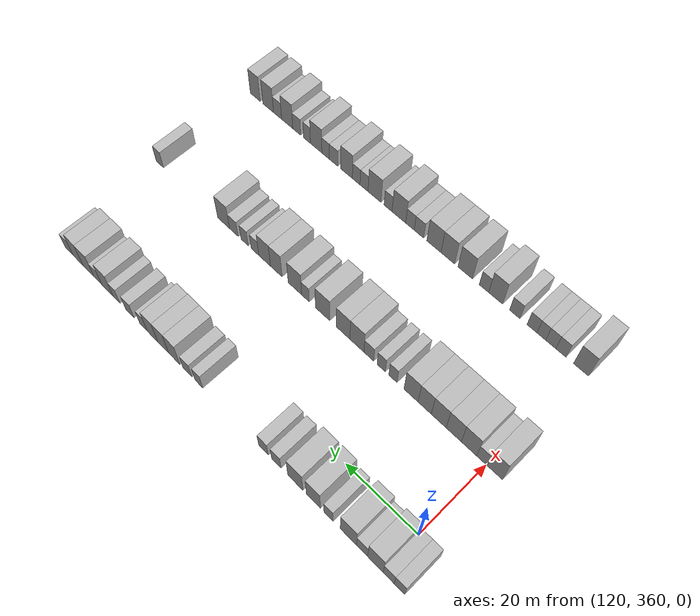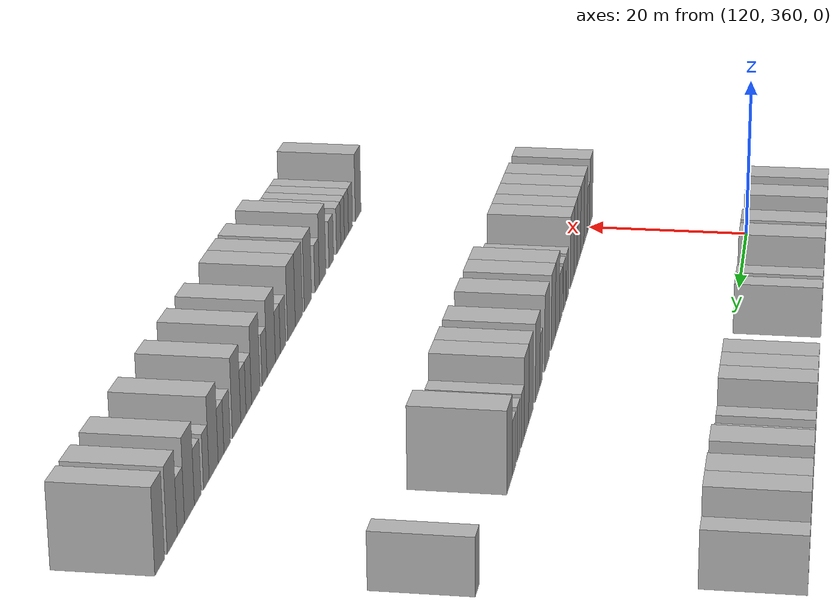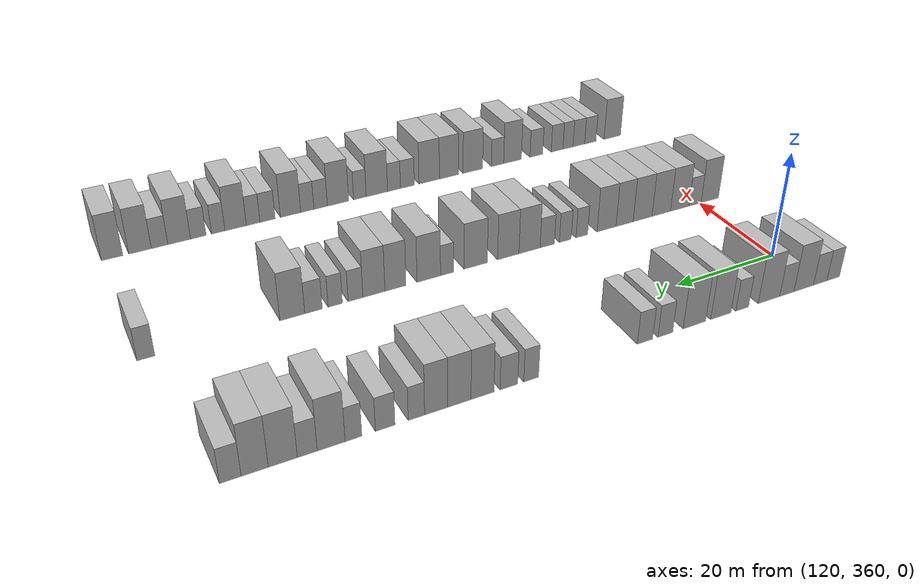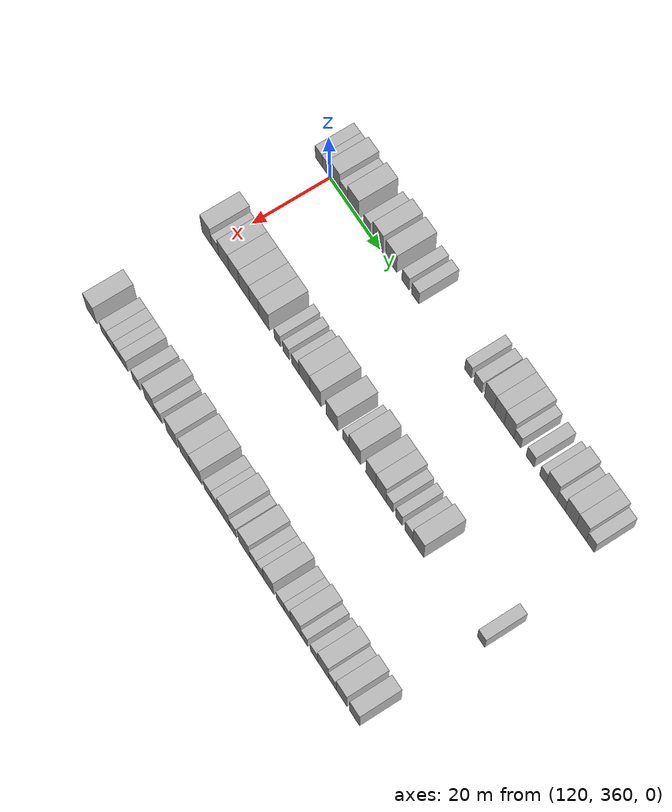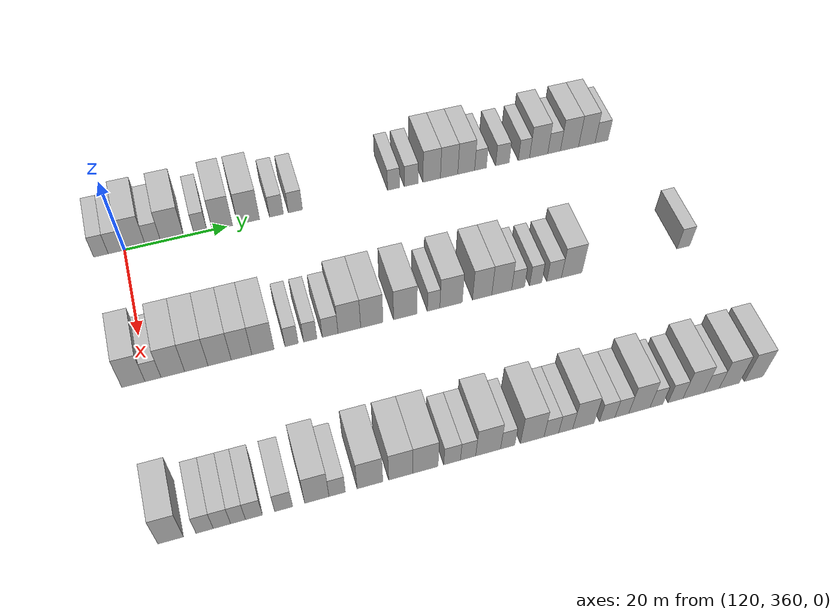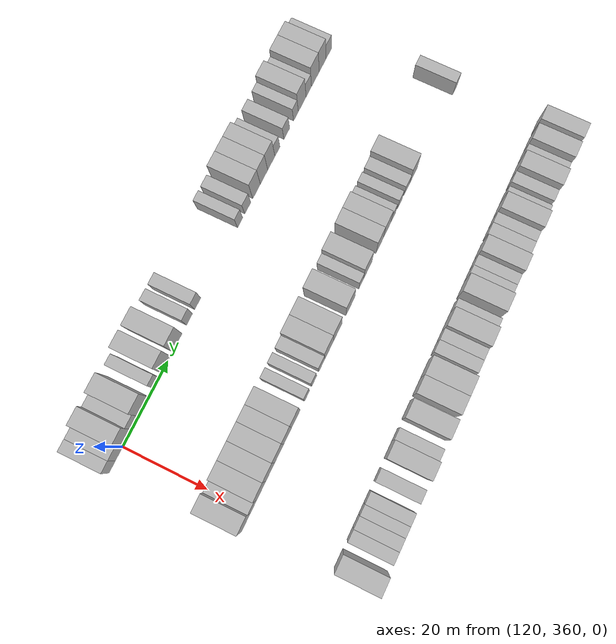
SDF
<sdf version="1.6">
 <world name="default">
  <model name="building_921">
   <static>1</static>
   <pose>115.0000 355.5562 0 0.000000 0.000000 0.000000</pose>
   <link name="link">
    <pose>0 0 3.00 0 0 0</pose>
    <collision name="collision"><geometry><box><size>10.0000 2.7755 6.0000</size></box></geometry></collision>
    <visual name="visual">
     <cast_shadows>0</cast_shadows>
     <geometry><box><size>10.0000 2.7755 6.0000</size></box></geometry>
     <material>
      <script>
       <uri>model://HANNAS_wall/materials/scripts</uri>
       <uri>model://HANNAS_wall/materials/textures</uri>
       <name>vrc/HANNAS_wall</name>
      </script>
     </material>
    </visual>
   </link>
  </model>
  <model name="building_922">
   <static>1</static>
   <pose>115.0000 358.4067 0 0.000000 0.000000 0.000000</pose>
   <link name="link">
    <pose>0 0 3.00 0 0 0</pose>
    <collision name="collision"><geometry><box><size>10.0000 2.9255 6.0000</size></box></geometry></collision>
    <visual name="visual">
     <cast_shadows>0</cast_shadows>
     <geometry><box><size>10.0000 2.9255 6.0000</size></box></geometry>
     <material>
      <script>
       <uri>model://HANNAS_wall/materials/scripts</uri>
       <uri>model://HANNAS_wall/materials/textures</uri>
       <name>vrc/HANNAS_wall</name>
      </script>
     </material>
    </visual>
   </link>
  </model>
  <model name="building_923">
   <static>1</static>
   <pose>115.0000 361.9627 0 0.000000 0.000000 0.000000</pose>
   <link name="link">
    <pose>0 0 4.50 0 0 0</pose>
    <collision name="collision"><geometry><box><size>10.0000 4.1866 9.0000</size></box></geometry></collision>
    <visual name="visual">
     <cast_shadows>0</cast_shadows>
     <geometry><box><size>10.0000 4.1866 9.0000</size></box></geometry>
     <material>
      <script>
       <uri>model://HANNAS_wall/materials/scripts</uri>
       <uri>model://HANNAS_wall/materials/textures</uri>
       <name>vrc/HANNAS_wall</name>
      </script>
     </material>
    </visual>
   </link>
  </model>
  <model name="building_924">
   <static>1</static>
   <pose>115.0000 365.5519 0 0.000000 0.000000 0.000000</pose>
   <link name="link">
    <pose>0 0 3.00 0 0 0</pose>
    <collision name="collision"><geometry><box><size>10.0000 2.9918 6.0000</size></box></geometry></collision>
    <visual name="visual">
     <cast_shadows>0</cast_shadows>
     <geometry><box><size>10.0000 2.9918 6.0000</size></box></geometry>
     <material>
      <script>
       <uri>model://HANNAS_wall/materials/scripts</uri>
       <uri>model://HANNAS_wall/materials/textures</uri>
       <name>vrc/HANNAS_wall</name>
      </script>
     </material>
    </visual>
   </link>
  </model>
  <model name="building_925">
   <static>1</static>
   <pose>115.0000 369.2800 0 0.000000 0.000000 0.000000</pose>
   <link name="link">
    <pose>0 0 4.50 0 0 0</pose>
    <collision name="collision"><geometry><box><size>10.0000 4.4643 9.0000</size></box></geometry></collision>
    <visual name="visual">
     <cast_shadows>0</cast_shadows>
     <geometry><box><size>10.0000 4.4643 9.0000</size></box></geometry>
     <material>
      <script>
       <uri>model://HANNAS_wall/materials/scripts</uri>
       <uri>model://HANNAS_wall/materials/textures</uri>
       <name>vrc/HANNAS_wall</name>
      </script>
     </material>
    </visual>
   </link>
  </model>
  <model name="building_926">
   <static>1</static>
   <pose>115.0000 374.7971 0 0.000000 0.000000 0.000000</pose>
   <link name="link">
    <pose>0 0 3.00 0 0 0</pose>
    <collision name="collision"><geometry><box><size>10.0000 2.5699 6.0000</size></box></geometry></collision>
    <visual name="visual">
     <cast_shadows>0</cast_shadows>
     <geometry><box><size>10.0000 2.5699 6.0000</size></box></geometry>
     <material>
      <script>
       <uri>model://HANNAS_wall/materials/scripts</uri>
       <uri>model://HANNAS_wall/materials/textures</uri>
       <name>vrc/HANNAS_wall</name>
      </script>
     </material>
    </visual>
   </link>
  </model>
  <model name="building_927">
   <static>1</static>
   <pose>115.0000 379.0890 0 0.000000 0.000000 0.000000</pose>
   <link name="link">
    <pose>0 0 4.50 0 0 0</pose>
    <collision name="collision"><geometry><box><size>10.0000 4.0141 9.0000</size></box></geometry></collision>
    <visual name="visual">
     <cast_shadows>0</cast_shadows>
     <geometry><box><size>10.0000 4.0141 9.0000</size></box></geometry>
     <material>
      <script>
       <uri>model://HANNAS_wall/materials/scripts</uri>
       <uri>model://HANNAS_wall/materials/textures</uri>
       <name>vrc/HANNAS_wall</name>
      </script>
     </material>
    </visual>
   </link>
  </model>
  <model name="building_928">
   <static>1</static>
   <pose>115.0000 384.2812 0 0.000000 0.000000 0.000000</pose>
   <link name="link">
    <pose>0 0 4.50 0 0 0</pose>
    <collision name="collision"><geometry><box><size>10.0000 4.3702 9.0000</size></box></geometry></collision>
    <visual name="visual">
     <cast_shadows>0</cast_shadows>
     <geometry><box><size>10.0000 4.3702 9.0000</size></box></geometry>
     <material>
      <script>
       <uri>model://HANNAS_wall/materials/scripts</uri>
       <uri>model://HANNAS_wall/materials/textures</uri>
       <name>vrc/HANNAS_wall</name>
      </script>
     </material>
    </visual>
   </link>
  </model>
  <model name="building_929">
   <static>1</static>
   <pose>115.0000 389.8614 0 0.000000 0.000000 0.000000</pose>
   <link name="link">
    <pose>0 0 3.00 0 0 0</pose>
    <collision name="collision"><geometry><box><size>10.0000 2.7901 6.0000</size></box></geometry></collision>
    <visual name="visual">
     <cast_shadows>0</cast_shadows>
     <geometry><box><size>10.0000 2.7901 6.0000</size></box></geometry>
     <material>
      <script>
       <uri>model://HANNAS_wall/materials/scripts</uri>
       <uri>model://HANNAS_wall/materials/textures</uri>
       <name>vrc/HANNAS_wall</name>
      </script>
     </material>
    </visual>
   </link>
  </model>
  <model name="building_930">
   <static>1</static>
   <pose>115.0000 393.6793 0 0.000000 0.000000 0.000000</pose>
   <link name="link">
    <pose>0 0 3.00 0 0 0</pose>
    <collision name="collision"><geometry><box><size>10.0000 2.8458 6.0000</size></box></geometry></collision>
    <visual name="visual">
     <cast_shadows>0</cast_shadows>
     <geometry><box><size>10.0000 2.8458 6.0000</size></box></geometry>
     <material>
      <script>
       <uri>model://HANNAS_wall/materials/scripts</uri>
       <uri>model://HANNAS_wall/materials/textures</uri>
       <name>vrc/HANNAS_wall</name>
      </script>
     </material>
    </visual>
   </link>
  </model>
  <model name="building_931">
   <static>1</static>
   <pose>115.0000 413.8555 0 0.000000 0.000000 0.000000</pose>
   <link name="link">
    <pose>0 0 3.00 0 0 0</pose>
    <collision name="collision"><geometry><box><size>10.0000 2.5021 6.0000</size></box></geometry></collision>
    <visual name="visual">
     <cast_shadows>0</cast_shadows>
     <geometry><box><size>10.0000 2.5021 6.0000</size></box></geometry>
     <material>
      <script>
       <uri>model://HANNAS_wall/materials/scripts</uri>
       <uri>model://HANNAS_wall/materials/textures</uri>
       <name>vrc/HANNAS_wall</name>
      </script>
     </material>
    </visual>
   </link>
  </model>
  <model name="building_932">
   <static>1</static>
   <pose>115.0000 417.5689 0 0.000000 0.000000 0.000000</pose>
   <link name="link">
    <pose>0 0 3.00 0 0 0</pose>
    <collision name="collision"><geometry><box><size>10.0000 2.9247 6.0000</size></box></geometry></collision>
    <visual name="visual">
     <cast_shadows>0</cast_shadows>
     <geometry><box><size>10.0000 2.9247 6.0000</size></box></geometry>
     <material>
      <script>
       <uri>model://HANNAS_wall/materials/scripts</uri>
       <uri>model://HANNAS_wall/materials/textures</uri>
       <name>vrc/HANNAS_wall</name>
      </script>
     </material>
    </visual>
   </link>
  </model>
  <model name="building_933">
   <static>1</static>
   <pose>115.0000 421.8934 0 0.000000 0.000000 0.000000</pose>
   <link name="link">
    <pose>0 0 4.50 0 0 0</pose>
    <collision name="collision"><geometry><box><size>10.0000 3.7242 9.0000</size></box></geometry></collision>
    <visual name="visual">
     <cast_shadows>0</cast_shadows>
     <geometry><box><size>10.0000 3.7242 9.0000</size></box></geometry>
     <material>
      <script>
       <uri>model://HANNAS_wall/materials/scripts</uri>
       <uri>model://HANNAS_wall/materials/textures</uri>
       <name>vrc/HANNAS_wall</name>
      </script>
     </material>
    </visual>
   </link>
  </model>
  <model name="building_934">
   <static>1</static>
   <pose>115.0000 425.6030 0 0.000000 0.000000 0.000000</pose>
   <link name="link">
    <pose>0 0 4.50 0 0 0</pose>
    <collision name="collision"><geometry><box><size>10.0000 3.6951 9.0000</size></box></geometry></collision>
    <visual name="visual">
     <cast_shadows>0</cast_shadows>
     <geometry><box><size>10.0000 3.6951 9.0000</size></box></geometry>
     <material>
      <script>
       <uri>model://HANNAS_wall/materials/scripts</uri>
       <uri>model://HANNAS_wall/materials/textures</uri>
       <name>vrc/HANNAS_wall</name>
      </script>
     </material>
    </visual>
   </link>
  </model>
  <model name="building_935">
   <static>1</static>
   <pose>115.0000 429.2545 0 0.000000 0.000000 0.000000</pose>
   <link name="link">
    <pose>0 0 4.50 0 0 0</pose>
    <collision name="collision"><geometry><box><size>10.0000 3.6079 9.0000</size></box></geometry></collision>
    <visual name="visual">
     <cast_shadows>0</cast_shadows>
     <geometry><box><size>10.0000 3.6079 9.0000</size></box></geometry>
     <material>
      <script>
       <uri>model://HANNAS_wall/materials/scripts</uri>
       <uri>model://HANNAS_wall/materials/textures</uri>
       <name>vrc/HANNAS_wall</name>
      </script>
     </material>
    </visual>
   </link>
  </model>
  <model name="building_936">
   <static>1</static>
   <pose>115.0000 432.3231 0 0.000000 0.000000 0.000000</pose>
   <link name="link">
    <pose>0 0 3.00 0 0 0</pose>
    <collision name="collision"><geometry><box><size>10.0000 2.5294 6.0000</size></box></geometry></collision>
    <visual name="visual">
     <cast_shadows>0</cast_shadows>
     <geometry><box><size>10.0000 2.5294 6.0000</size></box></geometry>
     <material>
      <script>
       <uri>model://HANNAS_wall/materials/scripts</uri>
       <uri>model://HANNAS_wall/materials/textures</uri>
       <name>vrc/HANNAS_wall</name>
      </script>
     </material>
    </visual>
   </link>
  </model>
  <model name="building_937">
   <static>1</static>
   <pose>115.0000 437.0625 0 0.000000 0.000000 0.000000</pose>
   <link name="link">
    <pose>0 0 3.00 0 0 0</pose>
    <collision name="collision"><geometry><box><size>10.0000 2.9494 6.0000</size></box></geometry></collision>
    <visual name="visual">
     <cast_shadows>0</cast_shadows>
     <geometry><box><size>10.0000 2.9494 6.0000</size></box></geometry>
     <material>
      <script>
       <uri>model://HANNAS_wall/materials/scripts</uri>
       <uri>model://HANNAS_wall/materials/textures</uri>
       <name>vrc/HANNAS_wall</name>
      </script>
     </material>
    </visual>
   </link>
  </model>
  <model name="building_938">
   <static>1</static>
   <pose>115.0000 441.7615 0 0.000000 0.000000 0.000000</pose>
   <link name="link">
    <pose>0 0 3.00 0 0 0</pose>
    <collision name="collision"><geometry><box><size>10.0000 2.4487 6.0000</size></box></geometry></collision>
    <visual name="visual">
     <cast_shadows>0</cast_shadows>
     <geometry><box><size>10.0000 2.4487 6.0000</size></box></geometry>
     <material>
      <script>
       <uri>model://HANNAS_wall/materials/scripts</uri>
       <uri>model://HANNAS_wall/materials/textures</uri>
       <name>vrc/HANNAS_wall</name>
      </script>
     </material>
    </visual>
   </link>
  </model>
  <model name="building_939">
   <static>1</static>
   <pose>115.0000 444.9935 0 0.000000 0.000000 0.000000</pose>
   <link name="link">
    <pose>0 0 4.50 0 0 0</pose>
    <collision name="collision"><geometry><box><size>10.0000 4.0154 9.0000</size></box></geometry></collision>
    <visual name="visual">
     <cast_shadows>0</cast_shadows>
     <geometry><box><size>10.0000 4.0154 9.0000</size></box></geometry>
     <material>
      <script>
       <uri>model://HANNAS_wall/materials/scripts</uri>
       <uri>model://HANNAS_wall/materials/textures</uri>
       <name>vrc/HANNAS_wall</name>
      </script>
     </material>
    </visual>
   </link>
  </model>
  <model name="building_940">
   <static>1</static>
   <pose>115.0000 448.4038 0 0.000000 0.000000 0.000000</pose>
   <link name="link">
    <pose>0 0 3.00 0 0 0</pose>
    <collision name="collision"><geometry><box><size>10.0000 2.8053 6.0000</size></box></geometry></collision>
    <visual name="visual">
     <cast_shadows>0</cast_shadows>
     <geometry><box><size>10.0000 2.8053 6.0000</size></box></geometry>
     <material>
      <script>
       <uri>model://HANNAS_wall/materials/scripts</uri>
       <uri>model://HANNAS_wall/materials/textures</uri>
       <name>vrc/HANNAS_wall</name>
      </script>
     </material>
    </visual>
   </link>
  </model>
  <model name="building_941">
   <static>1</static>
   <pose>115.0000 451.8221 0 0.000000 0.000000 0.000000</pose>
   <link name="link">
    <pose>0 0 4.50 0 0 0</pose>
    <collision name="collision"><geometry><box><size>10.0000 4.0312 9.0000</size></box></geometry></collision>
    <visual name="visual">
     <cast_shadows>0</cast_shadows>
     <geometry><box><size>10.0000 4.0312 9.0000</size></box></geometry>
     <material>
      <script>
       <uri>model://HANNAS_wall/materials/scripts</uri>
       <uri>model://HANNAS_wall/materials/textures</uri>
       <name>vrc/HANNAS_wall</name>
      </script>
     </material>
    </visual>
   </link>
  </model>
  <model name="building_942">
   <static>1</static>
   <pose>115.0000 455.6814 0 0.000000 0.000000 0.000000</pose>
   <link name="link">
    <pose>0 0 4.50 0 0 0</pose>
    <collision name="collision"><geometry><box><size>10.0000 3.6874 9.0000</size></box></geometry></collision>
    <visual name="visual">
     <cast_shadows>0</cast_shadows>
     <geometry><box><size>10.0000 3.6874 9.0000</size></box></geometry>
     <material>
      <script>
       <uri>model://HANNAS_wall/materials/scripts</uri>
       <uri>model://HANNAS_wall/materials/textures</uri>
       <name>vrc/HANNAS_wall</name>
      </script>
     </material>
    </visual>
   </link>
  </model>
  <model name="building_943">
   <static>1</static>
   <pose>115.0000 458.9762 0 0.000000 0.000000 0.000000</pose>
   <link name="link">
    <pose>0 0 3.00 0 0 0</pose>
    <collision name="collision"><geometry><box><size>10.0000 2.9020 6.0000</size></box></geometry></collision>
    <visual name="visual">
     <cast_shadows>0</cast_shadows>
     <geometry><box><size>10.0000 2.9020 6.0000</size></box></geometry>
     <material>
      <script>
       <uri>model://HANNAS_wall/materials/scripts</uri>
       <uri>model://HANNAS_wall/materials/textures</uri>
       <name>vrc/HANNAS_wall</name>
      </script>
     </material>
    </visual>
   </link>
  </model>
  <model name="building_1139">
   <static>1</static>
   <pose>145.0000 357.7288 0 0.000000 0.000000 0.000000</pose>
   <link name="link">
    <pose>0 0 4.50 0 0 0</pose>
    <collision name="collision"><geometry><box><size>10.0000 4.0595 9.0000</size></box></geometry></collision>
    <visual name="visual">
     <cast_shadows>0</cast_shadows>
     <geometry><box><size>10.0000 4.0595 9.0000</size></box></geometry>
     <material>
      <script>
       <uri>model://HANNAS_wall/materials/scripts</uri>
       <uri>model://HANNAS_wall/materials/textures</uri>
       <name>vrc/HANNAS_wall</name>
      </script>
     </material>
    </visual>
   </link>
  </model>
  <model name="building_1140">
   <static>1</static>
   <pose>145.0000 361.1741 0 0.000000 0.000000 0.000000</pose>
   <link name="link">
    <pose>0 0 3.00 0 0 0</pose>
    <collision name="collision"><geometry><box><size>10.0000 2.8312 6.0000</size></box></geometry></collision>
    <visual name="visual">
     <cast_shadows>0</cast_shadows>
     <geometry><box><size>10.0000 2.8312 6.0000</size></box></geometry>
     <material>
      <script>
       <uri>model://HANNAS_wall/materials/scripts</uri>
       <uri>model://HANNAS_wall/materials/textures</uri>
       <name>vrc/HANNAS_wall</name>
      </script>
     </material>
    </visual>
   </link>
  </model>
  <model name="building_1141">
   <static>1</static>
   <pose>145.0000 364.6829 0 0.000000 0.000000 0.000000</pose>
   <link name="link">
    <pose>0 0 4.50 0 0 0</pose>
    <collision name="collision"><geometry><box><size>10.0000 4.1863 9.0000</size></box></geometry></collision>
    <visual name="visual">
     <cast_shadows>0</cast_shadows>
     <geometry><box><size>10.0000 4.1863 9.0000</size></box></geometry>
     <material>
      <script>
       <uri>model://HANNAS_wall/materials/scripts</uri>
       <uri>model://HANNAS_wall/materials/textures</uri>
       <name>vrc/HANNAS_wall</name>
      </script>
     </material>
    </visual>
   </link>
  </model>
  <model name="building_1142">
   <static>1</static>
   <pose>145.0000 368.8574 0 0.000000 0.000000 0.000000</pose>
   <link name="link">
    <pose>0 0 4.50 0 0 0</pose>
    <collision name="collision"><geometry><box><size>10.0000 4.1627 9.0000</size></box></geometry></collision>
    <visual name="visual">
     <cast_shadows>0</cast_shadows>
     <geometry><box><size>10.0000 4.1627 9.0000</size></box></geometry>
     <material>
      <script>
       <uri>model://HANNAS_wall/materials/scripts</uri>
       <uri>model://HANNAS_wall/materials/textures</uri>
       <name>vrc/HANNAS_wall</name>
      </script>
     </material>
    </visual>
   </link>
  </model>
  <model name="building_1143">
   <static>1</static>
   <pose>145.0000 373.0242 0 0.000000 0.000000 0.000000</pose>
   <link name="link">
    <pose>0 0 4.50 0 0 0</pose>
    <collision name="collision"><geometry><box><size>10.0000 4.1710 9.0000</size></box></geometry></collision>
    <visual name="visual">
     <cast_shadows>0</cast_shadows>
     <geometry><box><size>10.0000 4.1710 9.0000</size></box></geometry>
     <material>
      <script>
       <uri>model://HANNAS_wall/materials/scripts</uri>
       <uri>model://HANNAS_wall/materials/textures</uri>
       <name>vrc/HANNAS_wall</name>
      </script>
     </material>
    </visual>
   </link>
  </model>
  <model name="building_1144">
   <static>1</static>
   <pose>145.0000 376.9782 0 0.000000 0.000000 0.000000</pose>
   <link name="link">
    <pose>0 0 4.50 0 0 0</pose>
    <collision name="collision"><geometry><box><size>10.0000 3.7372 9.0000</size></box></geometry></collision>
    <visual name="visual">
     <cast_shadows>0</cast_shadows>
     <geometry><box><size>10.0000 3.7372 9.0000</size></box></geometry>
     <material>
      <script>
       <uri>model://HANNAS_wall/materials/scripts</uri>
       <uri>model://HANNAS_wall/materials/textures</uri>
       <name>vrc/HANNAS_wall</name>
      </script>
     </material>
    </visual>
   </link>
  </model>
  <model name="building_1145">
   <static>1</static>
   <pose>145.0000 380.8734 0 0.000000 0.000000 0.000000</pose>
   <link name="link">
    <pose>0 0 4.50 0 0 0</pose>
    <collision name="collision"><geometry><box><size>10.0000 4.0532 9.0000</size></box></geometry></collision>
    <visual name="visual">
     <cast_shadows>0</cast_shadows>
     <geometry><box><size>10.0000 4.0532 9.0000</size></box></geometry>
     <material>
      <script>
       <uri>model://HANNAS_wall/materials/scripts</uri>
       <uri>model://HANNAS_wall/materials/textures</uri>
       <name>vrc/HANNAS_wall</name>
      </script>
     </material>
    </visual>
   </link>
  </model>
  <model name="building_1146">
   <static>1</static>
   <pose>145.0000 386.1185 0 0.000000 0.000000 0.000000</pose>
   <link name="link">
    <pose>0 0 3.00 0 0 0</pose>
    <collision name="collision"><geometry><box><size>10.0000 2.4369 6.0000</size></box></geometry></collision>
    <visual name="visual">
     <cast_shadows>0</cast_shadows>
     <geometry><box><size>10.0000 2.4369 6.0000</size></box></geometry>
     <material>
      <script>
       <uri>model://HANNAS_wall/materials/scripts</uri>
       <uri>model://HANNAS_wall/materials/textures</uri>
       <name>vrc/HANNAS_wall</name>
      </script>
     </material>
    </visual>
   </link>
  </model>
  <model name="building_1147">
   <static>1</static>
   <pose>145.0000 389.5645 0 0.000000 0.000000 0.000000</pose>
   <link name="link">
    <pose>0 0 3.00 0 0 0</pose>
    <collision name="collision"><geometry><box><size>10.0000 2.4551 6.0000</size></box></geometry></collision>
    <visual name="visual">
     <cast_shadows>0</cast_shadows>
     <geometry><box><size>10.0000 2.4551 6.0000</size></box></geometry>
     <material>
      <script>
       <uri>model://HANNAS_wall/materials/scripts</uri>
       <uri>model://HANNAS_wall/materials/textures</uri>
       <name>vrc/HANNAS_wall</name>
      </script>
     </material>
    </visual>
   </link>
  </model>
  <model name="building_1148">
   <static>1</static>
   <pose>145.0000 393.2566 0 0.000000 0.000000 0.000000</pose>
   <link name="link">
    <pose>0 0 3.00 0 0 0</pose>
    <collision name="collision"><geometry><box><size>10.0000 2.9292 6.0000</size></box></geometry></collision>
    <visual name="visual">
     <cast_shadows>0</cast_shadows>
     <geometry><box><size>10.0000 2.9292 6.0000</size></box></geometry>
     <material>
      <script>
       <uri>model://HANNAS_wall/materials/scripts</uri>
       <uri>model://HANNAS_wall/materials/textures</uri>
       <name>vrc/HANNAS_wall</name>
      </script>
     </material>
    </visual>
   </link>
  </model>
  <model name="building_1149">
   <static>1</static>
   <pose>145.0000 396.8478 0 0.000000 0.000000 0.000000</pose>
   <link name="link">
    <pose>0 0 4.50 0 0 0</pose>
    <collision name="collision"><geometry><box><size>10.0000 4.2532 9.0000</size></box></geometry></collision>
    <visual name="visual">
     <cast_shadows>0</cast_shadows>
     <geometry><box><size>10.0000 4.2532 9.0000</size></box></geometry>
     <material>
      <script>
       <uri>model://HANNAS_wall/materials/scripts</uri>
       <uri>model://HANNAS_wall/materials/textures</uri>
       <name>vrc/HANNAS_wall</name>
      </script>
     </material>
    </visual>
   </link>
  </model>
  <model name="building_1150">
   <static>1</static>
   <pose>145.0000 401.0845 0 0.000000 0.000000 0.000000</pose>
   <link name="link">
    <pose>0 0 4.50 0 0 0</pose>
    <collision name="collision"><geometry><box><size>10.0000 4.2203 9.0000</size></box></geometry></collision>
    <visual name="visual">
     <cast_shadows>0</cast_shadows>
     <geometry><box><size>10.0000 4.2203 9.0000</size></box></geometry>
     <material>
      <script>
       <uri>model://HANNAS_wall/materials/scripts</uri>
       <uri>model://HANNAS_wall/materials/textures</uri>
       <name>vrc/HANNAS_wall</name>
      </script>
     </material>
    </visual>
   </link>
  </model>
  <model name="building_1151">
   <static>1</static>
   <pose>145.0000 407.4336 0 0.000000 0.000000 0.000000</pose>
   <link name="link">
    <pose>0 0 4.50 0 0 0</pose>
    <collision name="collision"><geometry><box><size>10.0000 4.4779 9.0000</size></box></geometry></collision>
    <visual name="visual">
     <cast_shadows>0</cast_shadows>
     <geometry><box><size>10.0000 4.4779 9.0000</size></box></geometry>
     <material>
      <script>
       <uri>model://HANNAS_wall/materials/scripts</uri>
       <uri>model://HANNAS_wall/materials/textures</uri>
       <name>vrc/HANNAS_wall</name>
      </script>
     </material>
    </visual>
   </link>
  </model>
  <model name="building_1152">
   <static>1</static>
   <pose>145.0000 412.8787 0 0.000000 0.000000 0.000000</pose>
   <link name="link">
    <pose>0 0 3.00 0 0 0</pose>
    <collision name="collision"><geometry><box><size>10.0000 2.4122 6.0000</size></box></geometry></collision>
    <visual name="visual">
     <cast_shadows>0</cast_shadows>
     <geometry><box><size>10.0000 2.4122 6.0000</size></box></geometry>
     <material>
      <script>
       <uri>model://HANNAS_wall/materials/scripts</uri>
       <uri>model://HANNAS_wall/materials/textures</uri>
       <name>vrc/HANNAS_wall</name>
      </script>
     </material>
    </visual>
   </link>
  </model>
  <model name="building_1153">
   <static>1</static>
   <pose>145.0000 416.2638 0 0.000000 0.000000 0.000000</pose>
   <link name="link">
    <pose>0 0 4.50 0 0 0</pose>
    <collision name="collision"><geometry><box><size>10.0000 4.3581 9.0000</size></box></geometry></collision>
    <visual name="visual">
     <cast_shadows>0</cast_shadows>
     <geometry><box><size>10.0000 4.3581 9.0000</size></box></geometry>
     <material>
      <script>
       <uri>model://HANNAS_wall/materials/scripts</uri>
       <uri>model://HANNAS_wall/materials/textures</uri>
       <name>vrc/HANNAS_wall</name>
      </script>
     </material>
    </visual>
   </link>
  </model>
  <model name="building_1154">
   <static>1</static>
   <pose>145.0000 422.3423 0 0.000000 0.000000 0.000000</pose>
   <link name="link">
    <pose>0 0 4.50 0 0 0</pose>
    <collision name="collision"><geometry><box><size>10.0000 3.7988 9.0000</size></box></geometry></collision>
    <visual name="visual">
     <cast_shadows>0</cast_shadows>
     <geometry><box><size>10.0000 3.7988 9.0000</size></box></geometry>
     <material>
      <script>
       <uri>model://HANNAS_wall/materials/scripts</uri>
       <uri>model://HANNAS_wall/materials/textures</uri>
       <name>vrc/HANNAS_wall</name>
      </script>
     </material>
    </visual>
   </link>
  </model>
  <model name="building_1155">
   <static>1</static>
   <pose>145.0000 426.1955 0 0.000000 0.000000 0.000000</pose>
   <link name="link">
    <pose>0 0 4.50 0 0 0</pose>
    <collision name="collision"><geometry><box><size>10.0000 3.9078 9.0000</size></box></geometry></collision>
    <visual name="visual">
     <cast_shadows>0</cast_shadows>
     <geometry><box><size>10.0000 3.9078 9.0000</size></box></geometry>
     <material>
      <script>
       <uri>model://HANNAS_wall/materials/scripts</uri>
       <uri>model://HANNAS_wall/materials/textures</uri>
       <name>vrc/HANNAS_wall</name>
      </script>
     </material>
    </visual>
   </link>
  </model>
  <model name="building_1156">
   <static>1</static>
   <pose>145.0000 429.4367 0 0.000000 0.000000 0.000000</pose>
   <link name="link">
    <pose>0 0 3.00 0 0 0</pose>
    <collision name="collision"><geometry><box><size>10.0000 2.5746 6.0000</size></box></geometry></collision>
    <visual name="visual">
     <cast_shadows>0</cast_shadows>
     <geometry><box><size>10.0000 2.5746 6.0000</size></box></geometry>
     <material>
      <script>
       <uri>model://HANNAS_wall/materials/scripts</uri>
       <uri>model://HANNAS_wall/materials/textures</uri>
       <name>vrc/HANNAS_wall</name>
      </script>
     </material>
    </visual>
   </link>
  </model>
  <model name="building_1157">
   <static>1</static>
   <pose>145.0000 432.9479 0 0.000000 0.000000 0.000000</pose>
   <link name="link">
    <pose>0 0 3.00 0 0 0</pose>
    <collision name="collision"><geometry><box><size>10.0000 2.4478 6.0000</size></box></geometry></collision>
    <visual name="visual">
     <cast_shadows>0</cast_shadows>
     <geometry><box><size>10.0000 2.4478 6.0000</size></box></geometry>
     <material>
      <script>
       <uri>model://HANNAS_wall/materials/scripts</uri>
       <uri>model://HANNAS_wall/materials/textures</uri>
       <name>vrc/HANNAS_wall</name>
      </script>
     </material>
    </visual>
   </link>
  </model>
  <model name="building_1158">
   <static>1</static>
   <pose>145.0000 436.6509 0 0.000000 0.000000 0.000000</pose>
   <link name="link">
    <pose>0 0 3.00 0 0 0</pose>
    <collision name="collision"><geometry><box><size>10.0000 2.9582 6.0000</size></box></geometry></collision>
    <visual name="visual">
     <cast_shadows>0</cast_shadows>
     <geometry><box><size>10.0000 2.9582 6.0000</size></box></geometry>
     <material>
      <script>
       <uri>model://HANNAS_wall/materials/scripts</uri>
       <uri>model://HANNAS_wall/materials/textures</uri>
       <name>vrc/HANNAS_wall</name>
      </script>
     </material>
    </visual>
   </link>
  </model>
  <model name="building_1159">
   <static>1</static>
   <pose>145.0000 440.2053 0 0.000000 0.000000 0.000000</pose>
   <link name="link">
    <pose>0 0 4.50 0 0 0</pose>
    <collision name="collision"><geometry><box><size>10.0000 4.1506 9.0000</size></box></geometry></collision>
    <visual name="visual">
     <cast_shadows>0</cast_shadows>
     <geometry><box><size>10.0000 4.1506 9.0000</size></box></geometry>
     <material>
      <script>
       <uri>model://HANNAS_wall/materials/scripts</uri>
       <uri>model://HANNAS_wall/materials/textures</uri>
       <name>vrc/HANNAS_wall</name>
      </script>
     </material>
    </visual>
   </link>
  </model>
  <model name="building_1160">
   <static>1</static>
   <pose>145.0000 463.3162 0 0.000000 0.000000 0.000000</pose>
   <link name="link">
    <pose>0 0 3.00 0 0 0</pose>
    <collision name="collision"><geometry><box><size>10.0000 2.6904 6.0000</size></box></geometry></collision>
    <visual name="visual">
     <cast_shadows>0</cast_shadows>
     <geometry><box><size>10.0000 2.6904 6.0000</size></box></geometry>
     <material>
      <script>
       <uri>model://HANNAS_wall/materials/scripts</uri>
       <uri>model://HANNAS_wall/materials/textures</uri>
       <name>vrc/HANNAS_wall</name>
      </script>
     </material>
    </visual>
   </link>
  </model>
  <model name="building_1365">
   <static>1</static>
   <pose>175.0000 359.6142 0 0.000000 0.000000 0.000000</pose>
   <link name="link">
    <pose>0 0 4.50 0 0 0</pose>
    <collision name="collision"><geometry><box><size>10.0000 4.0930 9.0000</size></box></geometry></collision>
    <visual name="visual">
     <cast_shadows>0</cast_shadows>
     <geometry><box><size>10.0000 4.0930 9.0000</size></box></geometry>
     <material>
      <script>
       <uri>model://HANNAS_wall/materials/scripts</uri>
       <uri>model://HANNAS_wall/materials/textures</uri>
       <name>vrc/HANNAS_wall</name>
      </script>
     </material>
    </visual>
   </link>
  </model>
  <model name="building_1366">
   <static>1</static>
   <pose>175.0000 365.0560 0 0.000000 0.000000 0.000000</pose>
   <link name="link">
    <pose>0 0 3.00 0 0 0</pose>
    <collision name="collision"><geometry><box><size>10.0000 2.7904 6.0000</size></box></geometry></collision>
    <visual name="visual">
     <cast_shadows>0</cast_shadows>
     <geometry><box><size>10.0000 2.7904 6.0000</size></box></geometry>
     <material>
      <script>
       <uri>model://HANNAS_wall/materials/scripts</uri>
       <uri>model://HANNAS_wall/materials/textures</uri>
       <name>vrc/HANNAS_wall</name>
      </script>
     </material>
    </visual>
   </link>
  </model>
  <model name="building_1367">
   <static>1</static>
   <pose>175.0000 367.8610 0 0.000000 0.000000 0.000000</pose>
   <link name="link">
    <pose>0 0 3.00 0 0 0</pose>
    <collision name="collision"><geometry><box><size>10.0000 2.8197 6.0000</size></box></geometry></collision>
    <visual name="visual">
     <cast_shadows>0</cast_shadows>
     <geometry><box><size>10.0000 2.8197 6.0000</size></box></geometry>
     <material>
      <script>
       <uri>model://HANNAS_wall/materials/scripts</uri>
       <uri>model://HANNAS_wall/materials/textures</uri>
       <name>vrc/HANNAS_wall</name>
      </script>
     </material>
    </visual>
   </link>
  </model>
  <model name="building_1368">
   <static>1</static>
   <pose>175.0000 370.4854 0 0.000000 0.000000 0.000000</pose>
   <link name="link">
    <pose>0 0 3.00 0 0 0</pose>
    <collision name="collision"><geometry><box><size>10.0000 2.4291 6.0000</size></box></geometry></collision>
    <visual name="visual">
     <cast_shadows>0</cast_shadows>
     <geometry><box><size>10.0000 2.4291 6.0000</size></box></geometry>
     <material>
      <script>
       <uri>model://HANNAS_wall/materials/scripts</uri>
       <uri>model://HANNAS_wall/materials/textures</uri>
       <name>vrc/HANNAS_wall</name>
      </script>
     </material>
    </visual>
   </link>
  </model>
  <model name="building_1369">
   <static>1</static>
   <pose>175.0000 373.0976 0 0.000000 0.000000 0.000000</pose>
   <link name="link">
    <pose>0 0 3.00 0 0 0</pose>
    <collision name="collision"><geometry><box><size>10.0000 2.7953 6.0000</size></box></geometry></collision>
    <visual name="visual">
     <cast_shadows>0</cast_shadows>
     <geometry><box><size>10.0000 2.7953 6.0000</size></box></geometry>
     <material>
      <script>
       <uri>model://HANNAS_wall/materials/scripts</uri>
       <uri>model://HANNAS_wall/materials/textures</uri>
       <name>vrc/HANNAS_wall</name>
      </script>
     </material>
    </visual>
   </link>
  </model>
  <model name="building_1370">
   <static>1</static>
   <pose>175.0000 377.9907 0 0.000000 0.000000 0.000000</pose>
   <link name="link">
    <pose>0 0 3.00 0 0 0</pose>
    <collision name="collision"><geometry><box><size>10.0000 2.9908 6.0000</size></box></geometry></collision>
    <visual name="visual">
     <cast_shadows>0</cast_shadows>
     <geometry><box><size>10.0000 2.9908 6.0000</size></box></geometry>
     <material>
      <script>
       <uri>model://HANNAS_wall/materials/scripts</uri>
       <uri>model://HANNAS_wall/materials/textures</uri>
       <name>vrc/HANNAS_wall</name>
      </script>
     </material>
    </visual>
   </link>
  </model>
  <model name="building_1371">
   <static>1</static>
   <pose>175.0000 383.5188 0 0.000000 0.000000 0.000000</pose>
   <link name="link">
    <pose>0 0 4.50 0 0 0</pose>
    <collision name="collision"><geometry><box><size>10.0000 4.0653 9.0000</size></box></geometry></collision>
    <visual name="visual">
     <cast_shadows>0</cast_shadows>
     <geometry><box><size>10.0000 4.0653 9.0000</size></box></geometry>
     <material>
      <script>
       <uri>model://HANNAS_wall/materials/scripts</uri>
       <uri>model://HANNAS_wall/materials/textures</uri>
       <name>vrc/HANNAS_wall</name>
      </script>
     </material>
    </visual>
   </link>
  </model>
  <model name="building_1372">
   <static>1</static>
   <pose>175.0000 386.9304 0 0.000000 0.000000 0.000000</pose>
   <link name="link">
    <pose>0 0 3.00 0 0 0</pose>
    <collision name="collision"><geometry><box><size>10.0000 2.7580 6.0000</size></box></geometry></collision>
    <visual name="visual">
     <cast_shadows>0</cast_shadows>
     <geometry><box><size>10.0000 2.7580 6.0000</size></box></geometry>
     <material>
      <script>
       <uri>model://HANNAS_wall/materials/scripts</uri>
       <uri>model://HANNAS_wall/materials/textures</uri>
       <name>vrc/HANNAS_wall</name>
      </script>
     </material>
    </visual>
   </link>
  </model>
  <model name="building_1373">
   <static>1</static>
   <pose>175.0000 392.4930 0 0.000000 0.000000 0.000000</pose>
   <link name="link">
    <pose>0 0 4.50 0 0 0</pose>
    <collision name="collision"><geometry><box><size>10.0000 4.3671 9.0000</size></box></geometry></collision>
    <visual name="visual">
     <cast_shadows>0</cast_shadows>
     <geometry><box><size>10.0000 4.3671 9.0000</size></box></geometry>
     <material>
      <script>
       <uri>model://HANNAS_wall/materials/scripts</uri>
       <uri>model://HANNAS_wall/materials/textures</uri>
       <name>vrc/HANNAS_wall</name>
      </script>
     </material>
    </visual>
   </link>
  </model>
  <model name="building_1374">
   <static>1</static>
   <pose>175.0000 397.7545 0 0.000000 0.000000 0.000000</pose>
   <link name="link">
    <pose>0 0 4.50 0 0 0</pose>
    <collision name="collision"><geometry><box><size>10.0000 4.1559 9.0000</size></box></geometry></collision>
    <visual name="visual">
     <cast_shadows>0</cast_shadows>
     <geometry><box><size>10.0000 4.1559 9.0000</size></box></geometry>
     <material>
      <script>
       <uri>model://HANNAS_wall/materials/scripts</uri>
       <uri>model://HANNAS_wall/materials/textures</uri>
       <name>vrc/HANNAS_wall</name>
      </script>
     </material>
    </visual>
   </link>
  </model>
  <model name="building_1375">
   <static>1</static>
   <pose>175.0000 402.0270 0 0.000000 0.000000 0.000000</pose>
   <link name="link">
    <pose>0 0 4.50 0 0 0</pose>
    <collision name="collision"><geometry><box><size>10.0000 4.3890 9.0000</size></box></geometry></collision>
    <visual name="visual">
     <cast_shadows>0</cast_shadows>
     <geometry><box><size>10.0000 4.3890 9.0000</size></box></geometry>
     <material>
      <script>
       <uri>model://HANNAS_wall/materials/scripts</uri>
       <uri>model://HANNAS_wall/materials/textures</uri>
       <name>vrc/HANNAS_wall</name>
      </script>
     </material>
    </visual>
   </link>
  </model>
  <model name="building_1376">
   <static>1</static>
   <pose>175.0000 406.6888 0 0.000000 0.000000 0.000000</pose>
   <link name="link">
    <pose>0 0 3.00 0 0 0</pose>
    <collision name="collision"><geometry><box><size>10.0000 2.9346 6.0000</size></box></geometry></collision>
    <visual name="visual">
     <cast_shadows>0</cast_shadows>
     <geometry><box><size>10.0000 2.9346 6.0000</size></box></geometry>
     <material>
      <script>
       <uri>model://HANNAS_wall/materials/scripts</uri>
       <uri>model://HANNAS_wall/materials/textures</uri>
       <name>vrc/HANNAS_wall</name>
      </script>
     </material>
    </visual>
   </link>
  </model>
  <model name="building_1377">
   <static>1</static>
   <pose>175.0000 409.5014 0 0.000000 0.000000 0.000000</pose>
   <link name="link">
    <pose>0 0 3.00 0 0 0</pose>
    <collision name="collision"><geometry><box><size>10.0000 2.6906 6.0000</size></box></geometry></collision>
    <visual name="visual">
     <cast_shadows>0</cast_shadows>
     <geometry><box><size>10.0000 2.6906 6.0000</size></box></geometry>
     <material>
      <script>
       <uri>model://HANNAS_wall/materials/scripts</uri>
       <uri>model://HANNAS_wall/materials/textures</uri>
       <name>vrc/HANNAS_wall</name>
      </script>
     </material>
    </visual>
   </link>
  </model>
  <model name="building_1378">
   <static>1</static>
   <pose>175.0000 413.0454 0 0.000000 0.000000 0.000000</pose>
   <link name="link">
    <pose>0 0 4.50 0 0 0</pose>
    <collision name="collision"><geometry><box><size>10.0000 4.3973 9.0000</size></box></geometry></collision>
    <visual name="visual">
     <cast_shadows>0</cast_shadows>
     <geometry><box><size>10.0000 4.3973 9.0000</size></box></geometry>
     <material>
      <script>
       <uri>model://HANNAS_wall/materials/scripts</uri>
       <uri>model://HANNAS_wall/materials/textures</uri>
       <name>vrc/HANNAS_wall</name>
      </script>
     </material>
    </visual>
   </link>
  </model>
  <model name="building_1379">
   <static>1</static>
   <pose>175.0000 416.5241 0 0.000000 0.000000 0.000000</pose>
   <link name="link">
    <pose>0 0 3.00 0 0 0</pose>
    <collision name="collision"><geometry><box><size>10.0000 2.5602 6.0000</size></box></geometry></collision>
    <visual name="visual">
     <cast_shadows>0</cast_shadows>
     <geometry><box><size>10.0000 2.5602 6.0000</size></box></geometry>
     <material>
      <script>
       <uri>model://HANNAS_wall/materials/scripts</uri>
       <uri>model://HANNAS_wall/materials/textures</uri>
       <name>vrc/HANNAS_wall</name>
      </script>
     </material>
    </visual>
   </link>
  </model>
  <model name="building_1380">
   <static>1</static>
   <pose>175.0000 420.9299 0 0.000000 0.000000 0.000000</pose>
   <link name="link">
    <pose>0 0 4.50 0 0 0</pose>
    <collision name="collision"><geometry><box><size>10.0000 4.2514 9.0000</size></box></geometry></collision>
    <visual name="visual">
     <cast_shadows>0</cast_shadows>
     <geometry><box><size>10.0000 4.2514 9.0000</size></box></geometry>
     <material>
      <script>
       <uri>model://HANNAS_wall/materials/scripts</uri>
       <uri>model://HANNAS_wall/materials/textures</uri>
       <name>vrc/HANNAS_wall</name>
      </script>
     </material>
    </visual>
   </link>
  </model>
  <model name="building_1381">
   <static>1</static>
   <pose>175.0000 424.3909 0 0.000000 0.000000 0.000000</pose>
   <link name="link">
    <pose>0 0 3.00 0 0 0</pose>
    <collision name="collision"><geometry><box><size>10.0000 2.6704 6.0000</size></box></geometry></collision>
    <visual name="visual">
     <cast_shadows>0</cast_shadows>
     <geometry><box><size>10.0000 2.6704 6.0000</size></box></geometry>
     <material>
      <script>
       <uri>model://HANNAS_wall/materials/scripts</uri>
       <uri>model://HANNAS_wall/materials/textures</uri>
       <name>vrc/HANNAS_wall</name>
      </script>
     </material>
    </visual>
   </link>
  </model>
  <model name="building_1382">
   <static>1</static>
   <pose>175.0000 427.0057 0 0.000000 0.000000 0.000000</pose>
   <link name="link">
    <pose>0 0 3.00 0 0 0</pose>
    <collision name="collision"><geometry><box><size>10.0000 2.5592 6.0000</size></box></geometry></collision>
    <visual name="visual">
     <cast_shadows>0</cast_shadows>
     <geometry><box><size>10.0000 2.5592 6.0000</size></box></geometry>
     <material>
      <script>
       <uri>model://HANNAS_wall/materials/scripts</uri>
       <uri>model://HANNAS_wall/materials/textures</uri>
       <name>vrc/HANNAS_wall</name>
      </script>
     </material>
    </visual>
   </link>
  </model>
  <model name="building_1383">
   <static>1</static>
   <pose>175.0000 430.2521 0 0.000000 0.000000 0.000000</pose>
   <link name="link">
    <pose>0 0 4.50 0 0 0</pose>
    <collision name="collision"><geometry><box><size>10.0000 3.9335 9.0000</size></box></geometry></collision>
    <visual name="visual">
     <cast_shadows>0</cast_shadows>
     <geometry><box><size>10.0000 3.9335 9.0000</size></box></geometry>
     <material>
      <script>
       <uri>model://HANNAS_wall/materials/scripts</uri>
       <uri>model://HANNAS_wall/materials/textures</uri>
       <name>vrc/HANNAS_wall</name>
      </script>
     </material>
    </visual>
   </link>
  </model>
  <model name="building_1384">
   <static>1</static>
   <pose>175.0000 434.6545 0 0.000000 0.000000 0.000000</pose>
   <link name="link">
    <pose>0 0 3.00 0 0 0</pose>
    <collision name="collision"><geometry><box><size>10.0000 2.8715 6.0000</size></box></geometry></collision>
    <visual name="visual">
     <cast_shadows>0</cast_shadows>
     <geometry><box><size>10.0000 2.8715 6.0000</size></box></geometry>
     <material>
      <script>
       <uri>model://HANNAS_wall/materials/scripts</uri>
       <uri>model://HANNAS_wall/materials/textures</uri>
       <name>vrc/HANNAS_wall</name>
      </script>
     </material>
    </visual>
   </link>
  </model>
  <model name="building_1385">
   <static>1</static>
   <pose>175.0000 437.3708 0 0.000000 0.000000 0.000000</pose>
   <link name="link">
    <pose>0 0 3.00 0 0 0</pose>
    <collision name="collision"><geometry><box><size>10.0000 2.5611 6.0000</size></box></geometry></collision>
    <visual name="visual">
     <cast_shadows>0</cast_shadows>
     <geometry><box><size>10.0000 2.5611 6.0000</size></box></geometry>
     <material>
      <script>
       <uri>model://HANNAS_wall/materials/scripts</uri>
       <uri>model://HANNAS_wall/materials/textures</uri>
       <name>vrc/HANNAS_wall</name>
      </script>
     </material>
    </visual>
   </link>
  </model>
  <model name="building_1386">
   <static>1</static>
   <pose>175.0000 440.6386 0 0.000000 0.000000 0.000000</pose>
   <link name="link">
    <pose>0 0 4.50 0 0 0</pose>
    <collision name="collision"><geometry><box><size>10.0000 3.9744 9.0000</size></box></geometry></collision>
    <visual name="visual">
     <cast_shadows>0</cast_shadows>
     <geometry><box><size>10.0000 3.9744 9.0000</size></box></geometry>
     <material>
      <script>
       <uri>model://HANNAS_wall/materials/scripts</uri>
       <uri>model://HANNAS_wall/materials/textures</uri>
       <name>vrc/HANNAS_wall</name>
      </script>
     </material>
    </visual>
   </link>
  </model>
  <model name="building_1387">
   <static>1</static>
   <pose>175.0000 443.8413 0 0.000000 0.000000 0.000000</pose>
   <link name="link">
    <pose>0 0 3.00 0 0 0</pose>
    <collision name="collision"><geometry><box><size>10.0000 2.4310 6.0000</size></box></geometry></collision>
    <visual name="visual">
     <cast_shadows>0</cast_shadows>
     <geometry><box><size>10.0000 2.4310 6.0000</size></box></geometry>
     <material>
      <script>
       <uri>model://HANNAS_wall/materials/scripts</uri>
       <uri>model://HANNAS_wall/materials/textures</uri>
       <name>vrc/HANNAS_wall</name>
      </script>
     </material>
    </visual>
   </link>
  </model>
  <model name="building_1388">
   <static>1</static>
   <pose>175.0000 447.4571 0 0.000000 0.000000 0.000000</pose>
   <link name="link">
    <pose>0 0 3.00 0 0 0</pose>
    <collision name="collision"><geometry><box><size>10.0000 2.8007 6.0000</size></box></geometry></collision>
    <visual name="visual">
     <cast_shadows>0</cast_shadows>
     <geometry><box><size>10.0000 2.8007 6.0000</size></box></geometry>
     <material>
      <script>
       <uri>model://HANNAS_wall/materials/scripts</uri>
       <uri>model://HANNAS_wall/materials/textures</uri>
       <name>vrc/HANNAS_wall</name>
      </script>
     </material>
    </visual>
   </link>
  </model>
  <model name="building_1389">
   <static>1</static>
   <pose>175.0000 450.8744 0 0.000000 0.000000 0.000000</pose>
   <link name="link">
    <pose>0 0 4.50 0 0 0</pose>
    <collision name="collision"><geometry><box><size>10.0000 4.0338 9.0000</size></box></geometry></collision>
    <visual name="visual">
     <cast_shadows>0</cast_shadows>
     <geometry><box><size>10.0000 4.0338 9.0000</size></box></geometry>
     <material>
      <script>
       <uri>model://HANNAS_wall/materials/scripts</uri>
       <uri>model://HANNAS_wall/materials/textures</uri>
       <name>vrc/HANNAS_wall</name>
      </script>
     </material>
    </visual>
   </link>
  </model>
  <model name="building_1390">
   <static>1</static>
   <pose>175.0000 454.3392 0 0.000000 0.000000 0.000000</pose>
   <link name="link">
    <pose>0 0 3.00 0 0 0</pose>
    <collision name="collision"><geometry><box><size>10.0000 2.8959 6.0000</size></box></geometry></collision>
    <visual name="visual">
     <cast_shadows>0</cast_shadows>
     <geometry><box><size>10.0000 2.8959 6.0000</size></box></geometry>
     <material>
      <script>
       <uri>model://HANNAS_wall/materials/scripts</uri>
       <uri>model://HANNAS_wall/materials/textures</uri>
       <name>vrc/HANNAS_wall</name>
      </script>
     </material>
    </visual>
   </link>
  </model>
  <model name="building_1391">
   <static>1</static>
   <pose>175.0000 457.7414 0 0.000000 0.000000 0.000000</pose>
   <link name="link">
    <pose>0 0 4.50 0 0 0</pose>
    <collision name="collision"><geometry><box><size>10.0000 3.9085 9.0000</size></box></geometry></collision>
    <visual name="visual">
     <cast_shadows>0</cast_shadows>
     <geometry><box><size>10.0000 3.9085 9.0000</size></box></geometry>
     <material>
      <script>
       <uri>model://HANNAS_wall/materials/scripts</uri>
       <uri>model://HANNAS_wall/materials/textures</uri>
       <name>vrc/HANNAS_wall</name>
      </script>
     </material>
    </visual>
   </link>
  </model>
  <model name="building_1392">
   <static>1</static>
   <pose>175.0000 462.5168 0 0.000000 0.000000 0.000000</pose>
   <link name="link">
    <pose>0 0 4.50 0 0 0</pose>
    <collision name="collision"><geometry><box><size>10.0000 3.6423 9.0000</size></box></geometry></collision>
    <visual name="visual">
     <cast_shadows>0</cast_shadows>
     <geometry><box><size>10.0000 3.6423 9.0000</size></box></geometry>
     <material>
      <script>
       <uri>model://HANNAS_wall/materials/scripts</uri>
       <uri>model://HANNAS_wall/materials/textures</uri>
       <name>vrc/HANNAS_wall</name>
      </script>
     </material>
    </visual>
   </link>
  </model>
 </world>
</sdf>
